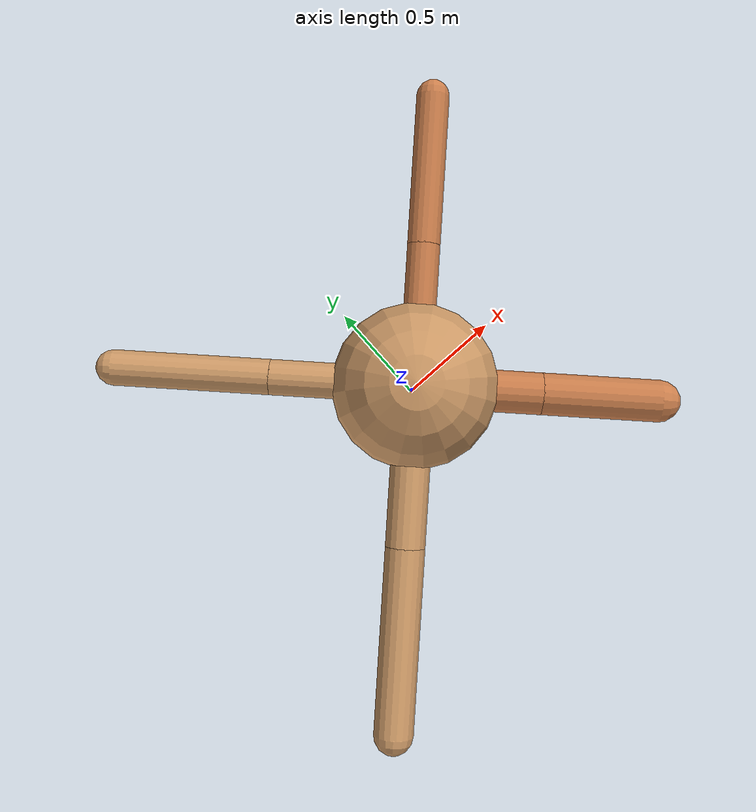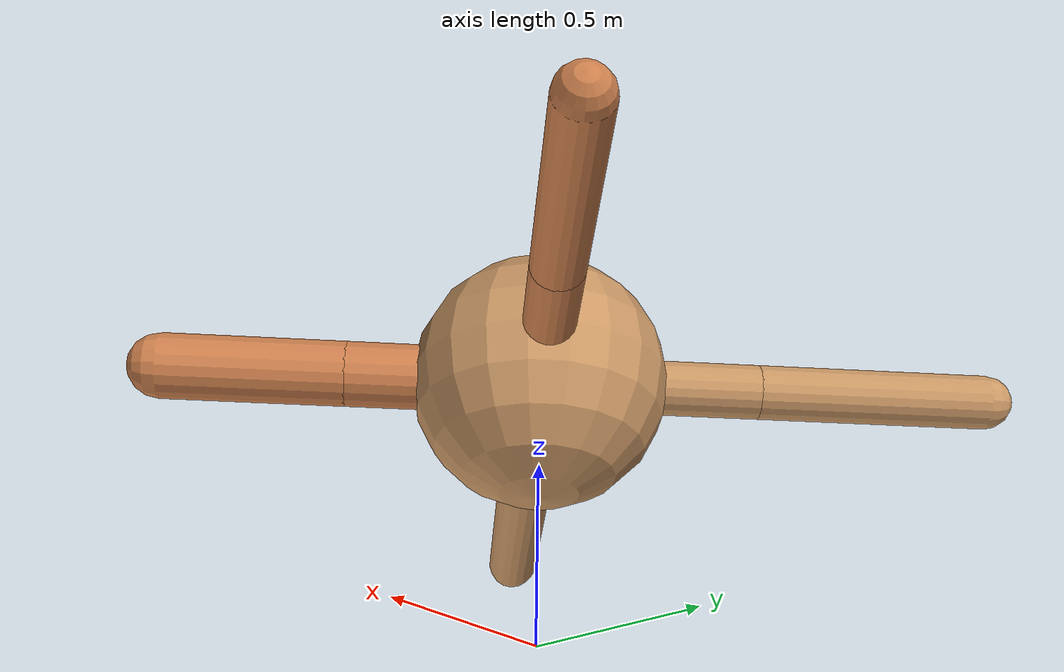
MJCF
<?xml version="1.0" ?>
<mujoco model="ant">

	<compiler angle="degree" coordinate="local" inertiafromgeom="true"/>

	<option integrator="RK4" timestep="0.01"/>

	<custom>

		<numeric data="0.0 0.0 0.55 1.0 0.0 0.0 0.0 0.0 1.0 0.0 -1.0 0.0 -1.0 0.0 1.0" name="init_qpos"/>

	</custom>

	<default>

		<joint armature="1" damping="1" limited="true"/>

		<geom conaffinity="0" condim="3" density="5.0" friction="1.5 0.1 0.1" margin="0.01" rgba="0.8 0.6 0.4 1"/>

	</default>

	<worldbody>

		<body name="torso" pos="0 0 0.75">

			<geom name="torso_geom" pos="0 0 0" size="0.35305669018190333" type="sphere"/>

			<!--joint armature="0" damping="0" limited="false" margin="0.01" name="root" pos="0 0 0" type="free"/-->

			<body name="front_left_leg" pos="0 0 0">

				<geom fromto="0 0 0 0.2 0.2 0" name="aux_1_geom" size="0.06975965459386926" type="capsule" rgba=".8 .5 .3 1"/>

				<body name="aux_1" pos="0.2 0.2 0">

					<joint axis="0 0 1" name="hip_1" pos="0.0 0.0 0.0" range="-40 40" type="hinge"/>

					<geom fromto="0 0 0 0.22134633601169507 0.22134633601169507 0" name="left_leg_geom" size="0.06975965459386926" type="capsule" rgba=".8 .5 .3 1"/>

					<body pos="0.22134633601169507 0.22134633601169507 0" name="front_left_foot">

						<joint axis="-1 1 0" name="ankle_1" pos="0.0 0.0 0.0" range="30 100" type="hinge"/>

						<geom fromto="0 0 0 0.44269267202339013 0.44269267202339013 0" name="left_ankle_geom" size="0.06975965459386926" type="capsule" rgba=".8 .5 .3 1"/>

					</body>

				</body>

			</body>

			<body name="front_right_leg" pos="0 0 0">

				<geom fromto="0 0 0 -0.2 0.2 0" name="aux_2_geom" size="0.07597176653004191" type="capsule"/>

				<body name="aux_2" pos="-0.2 0.2 0">

					<joint axis="0 0 1" name="hip_2" pos="0.0 0.0 0.0" range="-40 40" type="hinge"/>

					<geom fromto="0 0 0 -0.23215477863334766 0.23215477863334766 0" name="right_leg_geom" size="0.07597176653004191" type="capsule"/>

					<body pos="-0.23215477863334766 0.23215477863334766 0" name="front_right_foot">

						<joint axis="1 1 0" name="ankle_2" pos="0.0 0.0 0.0" range="-100 -30" type="hinge"/>

						<geom fromto="0 0 0 -0.4643095572666953 0.4643095572666953 0" name="right_ankle_geom" size="0.07597176653004191" type="capsule"/>

					</body>

				</body>

			</body>

			<body name="left_back_leg" pos="0 0 0">

				<geom fromto="0 0 0 -0.2 -0.2 0" name="aux_3_geom" size="0.08516236754143659" type="capsule"/>

				<body name="aux_3" pos="-0.2 -0.2 0">

					<joint axis="0 0 1" name="hip_3" pos="0.0 0.0 0.0" range="-40 40" type="hinge"/>

					<geom fromto="0 0 0 -0.28066733313113285 -0.28066733313113285 0" name="back_leg_geom" size="0.08516236754143659" type="capsule"/>

					<body pos="-0.28066733313113285 -0.28066733313113285 0" name="left_back_foot">

						<joint axis="-1 1 0" name="ankle_3" pos="0.0 0.0 0.0" range="-100 -30" type="hinge"/>

						<geom fromto="0 0 0 -0.5613346662622657 -0.5613346662622657 0" name="third_ankle_geom" size="0.08516236754143659" type="capsule"/>

					</body>

				</body>

			</body>

			<body name="right_back_leg" pos="0 0 0">

				<geom fromto="0 0 0 0.2 -0.2 0" name="aux_4_geom" size="0.08961887802642089" type="capsule" rgba=".8 .5 .3 1"/>

				<body name="aux_4" pos="0.2 -0.2 0">

					<joint axis="0 0 1" name="hip_4" pos="0.0 0.0 0.0" range="-40 40" type="hinge"/>

					<geom fromto="0 0 0 0.17547429254055671 -0.17547429254055671 0" name="rightback_leg_geom" size="0.08961887802642089" type="capsule" rgba=".8 .5 .3 1"/>

					<body pos="0.17547429254055671 -0.17547429254055671 0" name="right_back_foot">

						<joint axis="1 1 0" name="ankle_4" pos="0.0 0.0 0.0" range="30 100" type="hinge"/>

						<geom fromto="0 0 0 0.35094858508111343 -0.35094858508111343 0" name="fourth_ankle_geom" size="0.08961887802642089" type="capsule" rgba=".8 .5 .3 1"/>

					</body>

				</body>

			</body>

		</body>

	</worldbody>

	<actuator>

		<motor ctrllimited="true" ctrlrange="-1.0 1.0" joint="hip_4" gear="150"/>

		<motor ctrllimited="true" ctrlrange="-1.0 1.0" joint="ankle_4" gear="150"/>

		<motor ctrllimited="true" ctrlrange="-1.0 1.0" joint="hip_1" gear="150"/>

		<motor ctrllimited="true" ctrlrange="-1.0 1.0" joint="ankle_1" gear="150"/>

		<motor ctrllimited="true" ctrlrange="-1.0 1.0" joint="hip_2" gear="150"/>

		<motor ctrllimited="true" ctrlrange="-1.0 1.0" joint="ankle_2" gear="150"/>

		<motor ctrllimited="true" ctrlrange="-1.0 1.0" joint="hip_3" gear="150"/>

		<motor ctrllimited="true" ctrlrange="-1.0 1.0" joint="ankle_3" gear="150"/>

	</actuator>

</mujoco>
